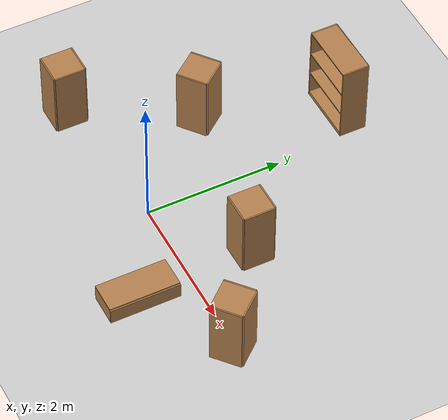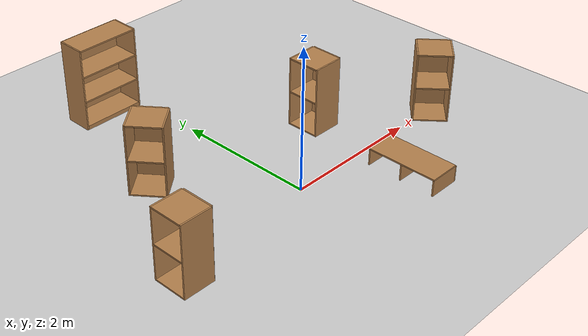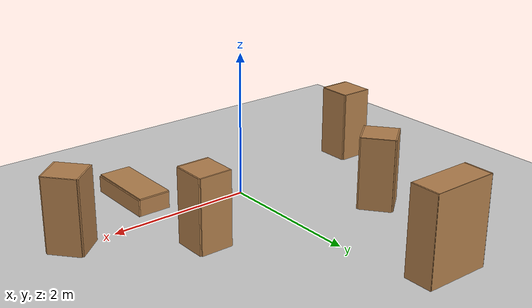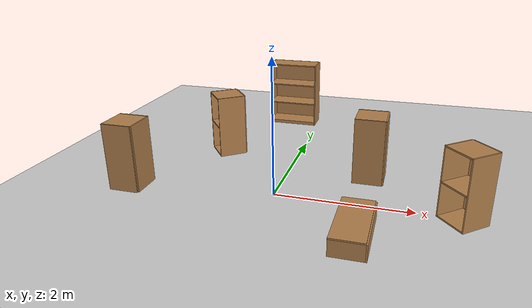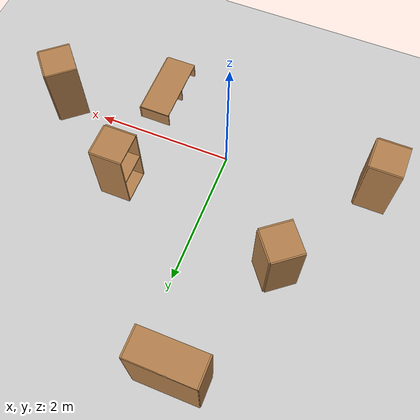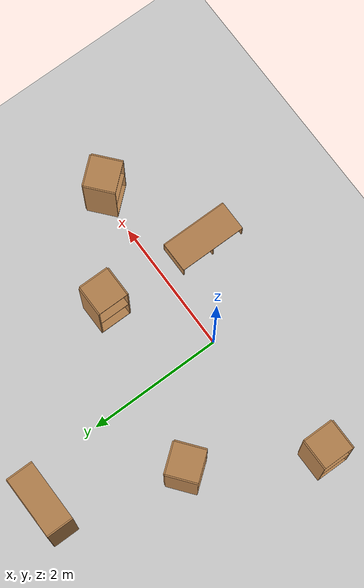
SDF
<sdf version="1.6">
 <world name="default">
  <light name="sun" type="directional">
   <pose>0 0 10 0 -0 0</pose>
   <diffuse>0.8 0.8 0.8 1</diffuse>
   <specular>0.1 0.1 0.1 1</specular>
   <attenuation>
    <range>1000</range>
    <constant>0.9</constant>
    <linear>0.01</linear>
    <quadratic>0.001</quadratic>
   </attenuation>
   <direction>-0.5 0.5 -1</direction>
  </light>
  <model name="ground_plane">
   <static>1</static>
   <link name="link">
    <collision name="collision">
     <geometry><plane><normal>0 0 1</normal><size>100 100</size></plane></geometry>
     <surface><friction><ode><mu>100</mu><mu2>50</mu2></ode></friction></surface>
    </collision>
    <visual name="visual">
     <cast_shadows>0</cast_shadows>
     <geometry><plane><normal>0 0 1</normal><size>100 100</size></plane></geometry>
     <material>
      <script><uri>file://media/materials/scripts/gazebo.material</uri><name>Gazebo/Grey</name></script>
     </material>
    </visual>
   </link>
  </model>
  <gravity>0 0 -9.8</gravity>
  <magnetic_field>6e-06 2.3e-05 -4.2e-05</magnetic_field>
  <atmosphere type="adiabatic"/>
  <physics name="default_physics" default="0" type="ode">
   <max_step_size>0.001</max_step_size>
   <real_time_factor>1</real_time_factor>
   <real_time_update_rate>1000</real_time_update_rate>
  </physics>
  <scene><ambient>0.4 0.4 0.4 1</ambient><background>0.7 0.7 0.7 1</background><shadows>1</shadows></scene>
  <spherical_coordinates>
   <surface_model>EARTH_WGS84</surface_model>
   <latitude_deg>0</latitude_deg>
   <longitude_deg>0</longitude_deg>
   <elevation>0</elevation>
   <heading_deg>0</heading_deg>
  </spherical_coordinates>
  <model name="bookshelf">
   <static>1</static>
   <link name="link">
    <inertial><mass>1</mass></inertial>
    <collision name="back">
     <pose>0 0.005 0.6 0 -0 0</pose>
     <geometry><box><size>0.9 0.01 1.2</size></box></geometry>
    </collision>
    <visual name="visual1">
     <pose>0 0.005 0.6 0 -0 0</pose>
     <geometry><box><size>0.9 0.01 1.2</size></box></geometry>
     <material>
      <script><uri>file://media/materials/scripts/gazebo.material</uri><name>Gazebo/Wood</name></script>
     </material>
    </visual>
    <collision name="left_side">
     <pose>0.45 -0.195 0.6 0 -0 0</pose>
     <geometry><box><size>0.02 0.4 1.2</size></box></geometry>
    </collision>
    <visual name="visual2">
     <pose>0.45 -0.195 0.6 0 -0 0</pose>
     <geometry><box><size>0.02 0.4 1.2</size></box></geometry>
     <material>
      <script><uri>file://media/materials/scripts/gazebo.material</uri><name>Gazebo/Wood</name></script>
     </material>
    </visual>
    <collision name="right_side">
     <pose>-0.45 -0.195 0.6 0 -0 0</pose>
     <geometry><box><size>0.02 0.4 1.2</size></box></geometry>
    </collision>
    <visual name="visual3">
     <pose>-0.45 -0.195 0.6 0 -0 0</pose>
     <geometry><box><size>0.02 0.4 1.2</size></box></geometry>
     <material>
      <script><uri>file://media/materials/scripts/gazebo.material</uri><name>Gazebo/Wood</name></script>
     </material>
    </visual>
    <collision name="bottom">
     <pose>0 -0.195 0.03 0 -0 0</pose>
     <geometry><box><size>0.88 0.4 0.06</size></box></geometry>
    </collision>
    <visual name="visual4">
     <pose>0 -0.195 0.03 0 -0 0</pose>
     <geometry><box><size>0.88 0.4 0.06</size></box></geometry>
     <material>
      <script><uri>file://media/materials/scripts/gazebo.material</uri><name>Gazebo/Wood</name></script>
     </material>
    </visual>
    <collision name="top">
     <pose>0 -0.195 1.19 0 -0 0</pose>
     <geometry><box><size>0.88 0.4 0.02</size></box></geometry>
    </collision>
    <visual name="visual5">
     <pose>0 -0.195 1.19 0 -0 0</pose>
     <geometry><box><size>0.88 0.4 0.02</size></box></geometry>
     <material>
      <script><uri>file://media/materials/scripts/gazebo.material</uri><name>Gazebo/Wood</name></script>
     </material>
    </visual>
    <collision name="low_shelf">
     <pose>0 -0.195 0.43 0 -0 0</pose>
     <geometry><box><size>0.88 0.4 0.02</size></box></geometry>
    </collision>
    <visual name="visual6">
     <pose>0 -0.195 0.43 0 -0 0</pose>
     <geometry><box><size>0.88 0.4 0.02</size></box></geometry>
     <material>
      <script><uri>file://media/materials/scripts/gazebo.material</uri><name>Gazebo/Wood</name></script>
     </material>
    </visual>
    <collision name="high_shelf">
     <pose>0 -0.195 0.8 0 -0 0</pose>
     <geometry><box><size>0.88 0.4 0.02</size></box></geometry>
    </collision>
    <visual name="visual7">
     <pose>0 -0.195 0.8 0 -0 0</pose>
     <geometry><box><size>0.88 0.4 0.02</size></box></geometry>
     <material>
      <script><uri>file://media/materials/scripts/gazebo.material</uri><name>Gazebo/Wood</name></script>
     </material>
    </visual>
   </link>
   <pose>-0.52829 3.38904 0 0 -0 0</pose>
  </model>
  <model name="cabinet">
   <static>1</static>
   <link name="cabinet_bottom_plate">
    <inertial>
     <pose>0 0 -1 0 -0 0</pose>
     <inertia><ixx>2.05</ixx><ixy>0</ixy><ixz>0</ixz><iyy>2.05</iyy><iyz>0</iyz><izz>2.05</izz></inertia>
     <mass>25</mass>
    </inertial>
    <collision name="cabinet_bottom_plate_geom">
     <pose>0 0 0.01 0 -0 0</pose>
     <geometry><box><size>0.45 0.45 0.02</size></box></geometry>
    </collision>
    <visual name="cabinet_bottom_plate_geom_visual">
     <pose>0 0 0.01 0 -0 0</pose>
     <geometry><box><size>0.45 0.45 0.02</size></box></geometry>
     <material>
      <script><uri>file://media/materials/scripts/gazebo.material</uri><name>Gazebo/Wood</name></script>
     </material>
    </visual>
    <collision name="cabinet_bottom_plate_geom_cabinet_back_plate">
     <pose>0.235 0 0.51 0 -0 0</pose>
     <geometry><box><size>0.02 0.45 1.02</size></box></geometry>
    </collision>
    <visual name="cabinet_bottom_plate_geom_cabinet_back_plate_visual">
     <pose>0.235 0 0.51 0 -0 0</pose>
     <geometry><box><size>0.02 0.45 1.02</size></box></geometry>
     <material>
      <script><uri>file://media/materials/scripts/gazebo.material</uri><name>Gazebo/Wood</name></script>
     </material>
    </visual>
    <collision name="cabinet_bottom_plate_geom_cabinet_left_plate">
     <pose>0 0.235 0.51 0 -0 0</pose>
     <geometry><box><size>0.45 0.02 1.02</size></box></geometry>
    </collision>
    <visual name="cabinet_bottom_plate_geom_cabinet_left_plate_visual">
     <pose>0 0.235 0.51 0 -0 0</pose>
     <geometry><box><size>0.45 0.02 1.02</size></box></geometry>
     <material>
      <script><uri>file://media/materials/scripts/gazebo.material</uri><name>Gazebo/Wood</name></script>
     </material>
    </visual>
    <collision name="cabinet_bottom_plate_geom_cabinet_middle_plate">
     <pose>0 0 0.51 0 -0 0</pose>
     <geometry><box><size>0.45 0.45 0.02</size></box></geometry>
    </collision>
    <visual name="cabinet_bottom_plate_geom_cabinet_middle_plate_visual">
     <pose>0 0 0.51 0 -0 0</pose>
     <geometry><box><size>0.45 0.45 0.02</size></box></geometry>
     <material>
      <script><uri>file://media/materials/scripts/gazebo.material</uri><name>Gazebo/Wood</name></script>
     </material>
    </visual>
    <collision name="cabinet_bottom_plate_geom_cabinet_right_plate">
     <pose>0 -0.235 0.51 0 -0 0</pose>
     <geometry><box><size>0.45 0.02 1.02</size></box></geometry>
    </collision>
    <visual name="cabinet_bottom_plate_geom_cabinet_right_plate_visual">
     <pose>0 -0.235 0.51 0 -0 0</pose>
     <geometry><box><size>0.45 0.02 1.02</size></box></geometry>
     <material>
      <script><uri>file://media/materials/scripts/gazebo.material</uri><name>Gazebo/Wood</name></script>
     </material>
    </visual>
    <collision name="cabinet_bottom_plate_geom_cabinet_top_plate">
     <pose>0 0 1.01 0 -0 0</pose>
     <geometry><box><size>0.45 0.45 0.02</size></box></geometry>
    </collision>
    <visual name="cabinet_bottom_plate_geom_cabinet_top_plate_visual">
     <pose>0 0 1.01 0 -0 0</pose>
     <geometry><box><size>0.45 0.45 0.02</size></box></geometry>
     <material>
      <script><uri>file://media/materials/scripts/gazebo.material</uri><name>Gazebo/Wood</name></script>
     </material>
    </visual>
   </link>
   <pose>-1.23683 1.39229 0 0 -0 0.667508</pose>
  </model>
  <model name="cabinet_0">
   <static>1</static>
   <link name="cabinet_bottom_plate">
    <inertial>
     <pose>0 0 -1 0 -0 0</pose>
     <inertia><ixx>2.05</ixx><ixy>0</ixy><ixz>0</ixz><iyy>2.05</iyy><iyz>0</iyz><izz>2.05</izz></inertia>
     <mass>25</mass>
    </inertial>
    <collision name="cabinet_bottom_plate_geom">
     <pose>0 0 0.01 0 -0 0</pose>
     <geometry><box><size>0.45 0.45 0.02</size></box></geometry>
    </collision>
    <visual name="cabinet_bottom_plate_geom_visual">
     <pose>0 0 0.01 0 -0 0</pose>
     <geometry><box><size>0.45 0.45 0.02</size></box></geometry>
     <material>
      <script><uri>file://media/materials/scripts/gazebo.material</uri><name>Gazebo/Wood</name></script>
     </material>
    </visual>
    <collision name="cabinet_bottom_plate_geom_cabinet_back_plate">
     <pose>0.235 0 0.51 0 -0 0</pose>
     <geometry><box><size>0.02 0.45 1.02</size></box></geometry>
    </collision>
    <visual name="cabinet_bottom_plate_geom_cabinet_back_plate_visual">
     <pose>0.235 0 0.51 0 -0 0</pose>
     <geometry><box><size>0.02 0.45 1.02</size></box></geometry>
     <material>
      <script><uri>file://media/materials/scripts/gazebo.material</uri><name>Gazebo/Wood</name></script>
     </material>
    </visual>
    <collision name="cabinet_bottom_plate_geom_cabinet_left_plate">
     <pose>0 0.235 0.51 0 -0 0</pose>
     <geometry><box><size>0.45 0.02 1.02</size></box></geometry>
    </collision>
    <visual name="cabinet_bottom_plate_geom_cabinet_left_plate_visual">
     <pose>0 0.235 0.51 0 -0 0</pose>
     <geometry><box><size>0.45 0.02 1.02</size></box></geometry>
     <material>
      <script><uri>file://media/materials/scripts/gazebo.material</uri><name>Gazebo/Wood</name></script>
     </material>
    </visual>
    <collision name="cabinet_bottom_plate_geom_cabinet_middle_plate">
     <pose>0 0 0.51 0 -0 0</pose>
     <geometry><box><size>0.45 0.45 0.02</size></box></geometry>
    </collision>
    <visual name="cabinet_bottom_plate_geom_cabinet_middle_plate_visual">
     <pose>0 0 0.51 0 -0 0</pose>
     <geometry><box><size>0.45 0.45 0.02</size></box></geometry>
     <material>
      <script><uri>file://media/materials/scripts/gazebo.material</uri><name>Gazebo/Wood</name></script>
     </material>
    </visual>
    <collision name="cabinet_bottom_plate_geom_cabinet_right_plate">
     <pose>0 -0.235 0.51 0 -0 0</pose>
     <geometry><box><size>0.45 0.02 1.02</size></box></geometry>
    </collision>
    <visual name="cabinet_bottom_plate_geom_cabinet_right_plate_visual">
     <pose>0 -0.235 0.51 0 -0 0</pose>
     <geometry><box><size>0.45 0.02 1.02</size></box></geometry>
     <material>
      <script><uri>file://media/materials/scripts/gazebo.material</uri><name>Gazebo/Wood</name></script>
     </material>
    </visual>
    <collision name="cabinet_bottom_plate_geom_cabinet_top_plate">
     <pose>0 0 1.01 0 -0 0</pose>
     <geometry><box><size>0.45 0.45 0.02</size></box></geometry>
    </collision>
    <visual name="cabinet_bottom_plate_geom_cabinet_top_plate_visual">
     <pose>0 0 1.01 0 -0 0</pose>
     <geometry><box><size>0.45 0.45 0.02</size></box></geometry>
     <material>
      <script><uri>file://media/materials/scripts/gazebo.material</uri><name>Gazebo/Wood</name></script>
     </material>
    </visual>
   </link>
   <pose>1.24668 0.913246 0 0 -0 0</pose>
  </model>
  <model name="cabinet_1">
   <static>1</static>
   <link name="cabinet_bottom_plate">
    <inertial>
     <pose>0 0 -1 0 -0 0</pose>
     <inertia><ixx>2.05</ixx><ixy>0</ixy><ixz>0</ixz><iyy>2.05</iyy><iyz>0</iyz><izz>2.05</izz></inertia>
     <mass>25</mass>
    </inertial>
    <collision name="cabinet_bottom_plate_geom">
     <pose>0 0 0.01 0 -0 0</pose>
     <geometry><box><size>0.45 0.45 0.02</size></box></geometry>
    </collision>
    <visual name="cabinet_bottom_plate_geom_visual">
     <pose>0 0 0.01 0 -0 0</pose>
     <geometry><box><size>0.45 0.45 0.02</size></box></geometry>
     <material>
      <script><uri>file://media/materials/scripts/gazebo.material</uri><name>Gazebo/Wood</name></script>
     </material>
    </visual>
    <collision name="cabinet_bottom_plate_geom_cabinet_back_plate">
     <pose>0.235 0 0.51 0 -0 0</pose>
     <geometry><box><size>0.02 0.45 1.02</size></box></geometry>
    </collision>
    <visual name="cabinet_bottom_plate_geom_cabinet_back_plate_visual">
     <pose>0.235 0 0.51 0 -0 0</pose>
     <geometry><box><size>0.02 0.45 1.02</size></box></geometry>
     <material>
      <script><uri>file://media/materials/scripts/gazebo.material</uri><name>Gazebo/Wood</name></script>
     </material>
    </visual>
    <collision name="cabinet_bottom_plate_geom_cabinet_left_plate">
     <pose>0 0.235 0.51 0 -0 0</pose>
     <geometry><box><size>0.45 0.02 1.02</size></box></geometry>
    </collision>
    <visual name="cabinet_bottom_plate_geom_cabinet_left_plate_visual">
     <pose>0 0.235 0.51 0 -0 0</pose>
     <geometry><box><size>0.45 0.02 1.02</size></box></geometry>
     <material>
      <script><uri>file://media/materials/scripts/gazebo.material</uri><name>Gazebo/Wood</name></script>
     </material>
    </visual>
    <collision name="cabinet_bottom_plate_geom_cabinet_middle_plate">
     <pose>0 0 0.51 0 -0 0</pose>
     <geometry><box><size>0.45 0.45 0.02</size></box></geometry>
    </collision>
    <visual name="cabinet_bottom_plate_geom_cabinet_middle_plate_visual">
     <pose>0 0 0.51 0 -0 0</pose>
     <geometry><box><size>0.45 0.45 0.02</size></box></geometry>
     <material>
      <script><uri>file://media/materials/scripts/gazebo.material</uri><name>Gazebo/Wood</name></script>
     </material>
    </visual>
    <collision name="cabinet_bottom_plate_geom_cabinet_right_plate">
     <pose>0 -0.235 0.51 0 -0 0</pose>
     <geometry><box><size>0.45 0.02 1.02</size></box></geometry>
    </collision>
    <visual name="cabinet_bottom_plate_geom_cabinet_right_plate_visual">
     <pose>0 -0.235 0.51 0 -0 0</pose>
     <geometry><box><size>0.45 0.02 1.02</size></box></geometry>
     <material>
      <script><uri>file://media/materials/scripts/gazebo.material</uri><name>Gazebo/Wood</name></script>
     </material>
    </visual>
    <collision name="cabinet_bottom_plate_geom_cabinet_top_plate">
     <pose>0 0 1.01 0 -0 0</pose>
     <geometry><box><size>0.45 0.45 0.02</size></box></geometry>
    </collision>
    <visual name="cabinet_bottom_plate_geom_cabinet_top_plate_visual">
     <pose>0 0 1.01 0 -0 0</pose>
     <geometry><box><size>0.45 0.45 0.02</size></box></geometry>
     <material>
      <script><uri>file://media/materials/scripts/gazebo.material</uri><name>Gazebo/Wood</name></script>
     </material>
    </visual>
   </link>
   <pose>1.24684 -1.26276 0 -1.57239 0 0</pose>
  </model>
  <model name="cabinet_2">
   <static>1</static>
   <link name="cabinet_bottom_plate">
    <inertial>
     <pose>0 0 -1 0 -0 0</pose>
     <inertia><ixx>2.05</ixx><ixy>0</ixy><ixz>0</ixz><iyy>2.05</iyy><iyz>0</iyz><izz>2.05</izz></inertia>
     <mass>25</mass>
    </inertial>
    <collision name="cabinet_bottom_plate_geom">
     <pose>0 0 0.01 0 -0 0</pose>
     <geometry><box><size>0.45 0.45 0.02</size></box></geometry>
    </collision>
    <visual name="cabinet_bottom_plate_geom_visual">
     <pose>0 0 0.01 0 -0 0</pose>
     <geometry><box><size>0.45 0.45 0.02</size></box></geometry>
     <material>
      <script><uri>file://media/materials/scripts/gazebo.material</uri><name>Gazebo/Wood</name></script>
     </material>
    </visual>
    <collision name="cabinet_bottom_plate_geom_cabinet_back_plate">
     <pose>0.235 0 0.51 0 -0 0</pose>
     <geometry><box><size>0.02 0.45 1.02</size></box></geometry>
    </collision>
    <visual name="cabinet_bottom_plate_geom_cabinet_back_plate_visual">
     <pose>0.235 0 0.51 0 -0 0</pose>
     <geometry><box><size>0.02 0.45 1.02</size></box></geometry>
     <material>
      <script><uri>file://media/materials/scripts/gazebo.material</uri><name>Gazebo/Wood</name></script>
     </material>
    </visual>
    <collision name="cabinet_bottom_plate_geom_cabinet_left_plate">
     <pose>0 0.235 0.51 0 -0 0</pose>
     <geometry><box><size>0.45 0.02 1.02</size></box></geometry>
    </collision>
    <visual name="cabinet_bottom_plate_geom_cabinet_left_plate_visual">
     <pose>0 0.235 0.51 0 -0 0</pose>
     <geometry><box><size>0.45 0.02 1.02</size></box></geometry>
     <material>
      <script><uri>file://media/materials/scripts/gazebo.material</uri><name>Gazebo/Wood</name></script>
     </material>
    </visual>
    <collision name="cabinet_bottom_plate_geom_cabinet_middle_plate">
     <pose>0 0 0.51 0 -0 0</pose>
     <geometry><box><size>0.45 0.45 0.02</size></box></geometry>
    </collision>
    <visual name="cabinet_bottom_plate_geom_cabinet_middle_plate_visual">
     <pose>0 0 0.51 0 -0 0</pose>
     <geometry><box><size>0.45 0.45 0.02</size></box></geometry>
     <material>
      <script><uri>file://media/materials/scripts/gazebo.material</uri><name>Gazebo/Wood</name></script>
     </material>
    </visual>
    <collision name="cabinet_bottom_plate_geom_cabinet_right_plate">
     <pose>0 -0.235 0.51 0 -0 0</pose>
     <geometry><box><size>0.45 0.02 1.02</size></box></geometry>
    </collision>
    <visual name="cabinet_bottom_plate_geom_cabinet_right_plate_visual">
     <pose>0 -0.235 0.51 0 -0 0</pose>
     <geometry><box><size>0.45 0.02 1.02</size></box></geometry>
     <material>
      <script><uri>file://media/materials/scripts/gazebo.material</uri><name>Gazebo/Wood</name></script>
     </material>
    </visual>
    <collision name="cabinet_bottom_plate_geom_cabinet_top_plate">
     <pose>0 0 1.01 0 -0 0</pose>
     <geometry><box><size>0.45 0.45 0.02</size></box></geometry>
    </collision>
    <visual name="cabinet_bottom_plate_geom_cabinet_top_plate_visual">
     <pose>0 0 1.01 0 -0 0</pose>
     <geometry><box><size>0.45 0.45 0.02</size></box></geometry>
     <material>
      <script><uri>file://media/materials/scripts/gazebo.material</uri><name>Gazebo/Wood</name></script>
     </material>
    </visual>
   </link>
   <pose>2.57805 -0.042562 0 0 -0 0.707566</pose>
  </model>
  <model name="cabinet_3">
   <static>1</static>
   <link name="cabinet_bottom_plate">
    <inertial>
     <pose>0 0 -1 0 -0 0</pose>
     <inertia><ixx>2.05</ixx><ixy>0</ixy><ixz>0</ixz><iyy>2.05</iyy><iyz>0</iyz><izz>2.05</izz></inertia>
     <mass>25</mass>
    </inertial>
    <collision name="cabinet_bottom_plate_geom">
     <pose>0 0 0.01 0 -0 0</pose>
     <geometry><box><size>0.45 0.45 0.02</size></box></geometry>
    </collision>
    <visual name="cabinet_bottom_plate_geom_visual">
     <pose>0 0 0.01 0 -0 0</pose>
     <geometry><box><size>0.45 0.45 0.02</size></box></geometry>
     <material>
      <script><uri>file://media/materials/scripts/gazebo.material</uri><name>Gazebo/Wood</name></script>
     </material>
    </visual>
    <collision name="cabinet_bottom_plate_geom_cabinet_back_plate">
     <pose>0.235 0 0.51 0 -0 0</pose>
     <geometry><box><size>0.02 0.45 1.02</size></box></geometry>
    </collision>
    <visual name="cabinet_bottom_plate_geom_cabinet_back_plate_visual">
     <pose>0.235 0 0.51 0 -0 0</pose>
     <geometry><box><size>0.02 0.45 1.02</size></box></geometry>
     <material>
      <script><uri>file://media/materials/scripts/gazebo.material</uri><name>Gazebo/Wood</name></script>
     </material>
    </visual>
    <collision name="cabinet_bottom_plate_geom_cabinet_left_plate">
     <pose>0 0.235 0.51 0 -0 0</pose>
     <geometry><box><size>0.45 0.02 1.02</size></box></geometry>
    </collision>
    <visual name="cabinet_bottom_plate_geom_cabinet_left_plate_visual">
     <pose>0 0.235 0.51 0 -0 0</pose>
     <geometry><box><size>0.45 0.02 1.02</size></box></geometry>
     <material>
      <script><uri>file://media/materials/scripts/gazebo.material</uri><name>Gazebo/Wood</name></script>
     </material>
    </visual>
    <collision name="cabinet_bottom_plate_geom_cabinet_middle_plate">
     <pose>0 0 0.51 0 -0 0</pose>
     <geometry><box><size>0.45 0.45 0.02</size></box></geometry>
    </collision>
    <visual name="cabinet_bottom_plate_geom_cabinet_middle_plate_visual">
     <pose>0 0 0.51 0 -0 0</pose>
     <geometry><box><size>0.45 0.45 0.02</size></box></geometry>
     <material>
      <script><uri>file://media/materials/scripts/gazebo.material</uri><name>Gazebo/Wood</name></script>
     </material>
    </visual>
    <collision name="cabinet_bottom_plate_geom_cabinet_right_plate">
     <pose>0 -0.235 0.51 0 -0 0</pose>
     <geometry><box><size>0.45 0.02 1.02</size></box></geometry>
    </collision>
    <visual name="cabinet_bottom_plate_geom_cabinet_right_plate_visual">
     <pose>0 -0.235 0.51 0 -0 0</pose>
     <geometry><box><size>0.45 0.02 1.02</size></box></geometry>
     <material>
      <script><uri>file://media/materials/scripts/gazebo.material</uri><name>Gazebo/Wood</name></script>
     </material>
    </visual>
    <collision name="cabinet_bottom_plate_geom_cabinet_top_plate">
     <pose>0 0 1.01 0 -0 0</pose>
     <geometry><box><size>0.45 0.45 0.02</size></box></geometry>
    </collision>
    <visual name="cabinet_bottom_plate_geom_cabinet_top_plate_visual">
     <pose>0 0 1.01 0 -0 0</pose>
     <geometry><box><size>0.45 0.45 0.02</size></box></geometry>
     <material>
      <script><uri>file://media/materials/scripts/gazebo.material</uri><name>Gazebo/Wood</name></script>
     </material>
    </visual>
   </link>
   <pose>-2.15287 -0.228704 0 0 -0 0</pose>
  </model>
 </world>
</sdf>
